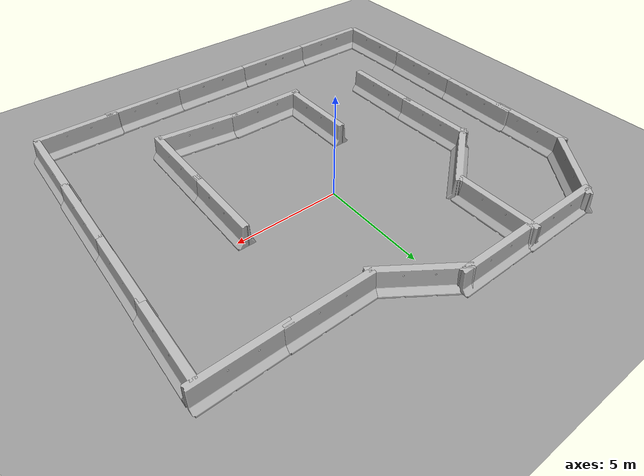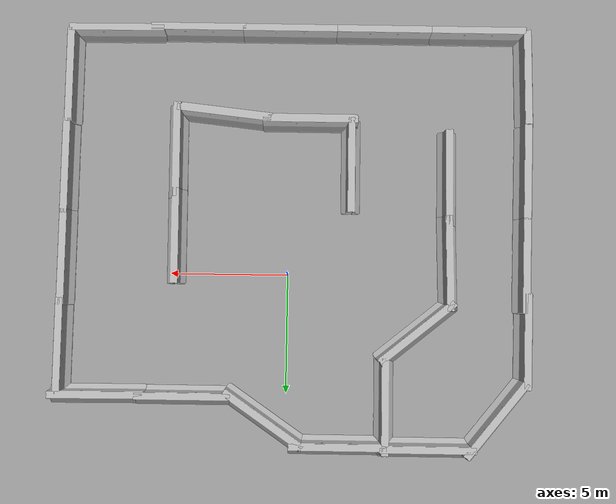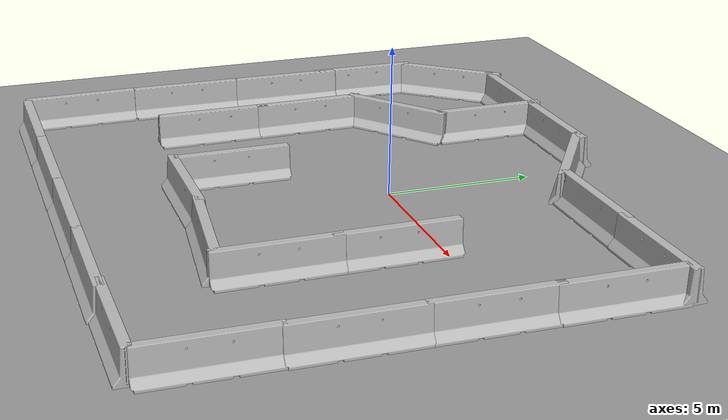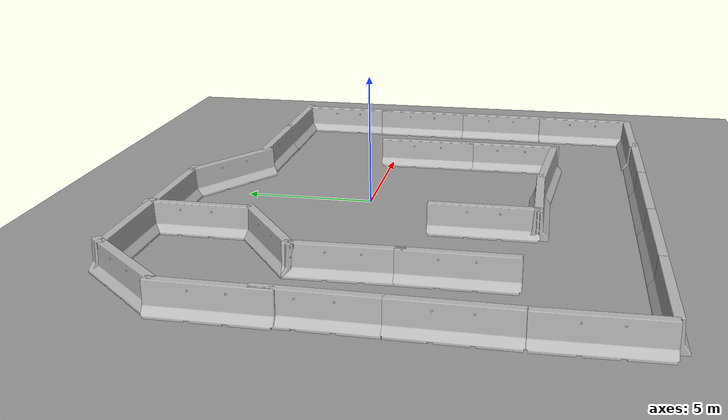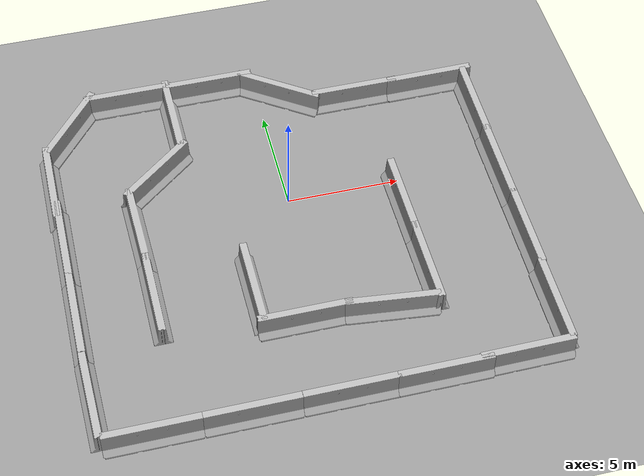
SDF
<sdf version="1.6">
 <world name="default">
  <light name="sun" type="directional">
   <pose>0 0 10 0 -0 0</pose>
   <diffuse>0.8 0.8 0.8 1</diffuse>
   <specular>0.2 0.2 0.2 1</specular>
   <attenuation>
    <range>1000</range>
    <constant>0.9</constant>
    <linear>0.01</linear>
    <quadratic>0.001</quadratic>
   </attenuation>
   <direction>0.5 0.1 -0.9</direction>
  </light>
  <scene><ambient>0.4 0.4 0.4 1</ambient><background>0.7 0.7 0.7 1</background><shadows>1</shadows></scene>
  <physics name="default_physics" default="0" type="ode">
   <max_step_size>0.01</max_step_size>
   <real_time_factor>1</real_time_factor>
   <real_time_update_rate>100</real_time_update_rate>
  </physics>
  <model name="ground_plane_0">
   <static>1</static>
   <link name="link">
    <collision name="collision">
     <geometry><plane><normal>0 0 1</normal><size>100 100</size></plane></geometry>
     <surface><friction><ode><mu>100</mu><mu2>50</mu2></ode></friction></surface>
    </collision>
    <visual name="visual">
     <cast_shadows>0</cast_shadows>
     <geometry><plane><normal>0 0 1</normal><size>100 100</size></plane></geometry>
     <material>
      <script><uri>file://media/materials/scripts/gazebo.material</uri><name>Gazebo/Grey</name></script>
     </material>
    </visual>
    <velocity_decay><linear>0</linear><angular>0</angular></velocity_decay>
   </link>
   <pose>0.497681 0 0 0 -0 0</pose>
  </model>
  <gravity>0 0 -9.8</gravity>
  <magnetic_field>6e-06 2.3e-05 -4.2e-05</magnetic_field>
  <atmosphere type="adiabatic"/>
  <spherical_coordinates>
   <surface_model>EARTH_WGS84</surface_model>
   <latitude_deg>0</latitude_deg>
   <longitude_deg>0</longitude_deg>
   <elevation>0</elevation>
   <heading_deg>0</heading_deg>
  </spherical_coordinates>
  <model name="jersey_barrier_0">
   <static>1</static>
   <link name="link">
    <visual name="visual">
     <geometry>
      <mesh><uri>model://jersey_barrier/meshes/jersey_barrier.dae</uri><scale>1 1 1</scale></mesh>
     </geometry>
    </visual>
    <collision name="upright">
     <pose>0 0 0.5715 0 -0 0</pose>
     <geometry><box><size>4.06542 0.3063 1.143</size></box></geometry>
    </collision>
    <collision name="base">
     <pose>0 0 0.032258 0 -0 0</pose>
     <geometry><box><size>4.06542 0.8107 0.064516</size></box></geometry>
    </collision>
    <collision name="base2">
     <pose>0 0 0.1 0 -0 0</pose>
     <geometry><box><size>4.06542 0.65 0.1</size></box></geometry>
    </collision>
    <collision name="base3">
     <pose>0 0 0.2 0 -0 0</pose>
     <geometry><box><size>4.06542 0.5 0.1</size></box></geometry>
    </collision>
    <collision name="left-angle">
     <pose>0 -0.224 0.2401 0.9 -0 0</pose>
     <geometry><box><size>4.06542 0.5 0.064516</size></box></geometry>
    </collision>
    <collision name="right-angle">
     <pose>0 0.224 0.2401 -0.9 0 0</pose>
     <geometry><box><size>4.06542 0.5 0.064516</size></box></geometry>
    </collision>
   </link>
   <pose>0.044913 -10.4917 0 0 -0 0</pose>
  </model>
  <model name="jersey_barrier_1">
   <static>1</static>
   <link name="link">
    <visual name="visual">
     <geometry>
      <mesh><uri>model://jersey_barrier/meshes/jersey_barrier.dae</uri><scale>1 1 1</scale></mesh>
     </geometry>
    </visual>
    <collision name="upright">
     <pose>0 0 0.5715 0 -0 0</pose>
     <geometry><box><size>4.06542 0.3063 1.143</size></box></geometry>
    </collision>
    <collision name="base">
     <pose>0 0 0.032258 0 -0 0</pose>
     <geometry><box><size>4.06542 0.8107 0.064516</size></box></geometry>
    </collision>
    <collision name="base2">
     <pose>0 0 0.1 0 -0 0</pose>
     <geometry><box><size>4.06542 0.65 0.1</size></box></geometry>
    </collision>
    <collision name="base3">
     <pose>0 0 0.2 0 -0 0</pose>
     <geometry><box><size>4.06542 0.5 0.1</size></box></geometry>
    </collision>
    <collision name="left-angle">
     <pose>0 -0.224 0.2401 0.9 -0 0</pose>
     <geometry><box><size>4.06542 0.5 0.064516</size></box></geometry>
    </collision>
    <collision name="right-angle">
     <pose>0 0.224 0.2401 -0.9 0 0</pose>
     <geometry><box><size>4.06542 0.5 0.064516</size></box></geometry>
    </collision>
   </link>
   <pose>3.93437 -10.4926 0 0 -0 0</pose>
  </model>
  <model name="jersey_barrier_1_clone_0">
   <static>1</static>
   <link name="link">
    <visual name="visual">
     <geometry>
      <mesh><uri>model://jersey_barrier/meshes/jersey_barrier.dae</uri><scale>1 1 1</scale></mesh>
     </geometry>
    </visual>
    <collision name="upright">
     <pose>0 0 0.5715 0 -0 0</pose>
     <geometry><box><size>4.06542 0.3063 1.143</size></box></geometry>
    </collision>
    <collision name="base">
     <pose>0 0 0.032258 0 -0 0</pose>
     <geometry><box><size>4.06542 0.8107 0.064516</size></box></geometry>
    </collision>
    <collision name="base2">
     <pose>0 0 0.1 0 -0 0</pose>
     <geometry><box><size>4.06542 0.65 0.1</size></box></geometry>
    </collision>
    <collision name="base3">
     <pose>0 0 0.2 0 -0 0</pose>
     <geometry><box><size>4.06542 0.5 0.1</size></box></geometry>
    </collision>
    <collision name="left-angle">
     <pose>0 -0.224 0.2401 0.9 -0 0</pose>
     <geometry><box><size>4.06542 0.5 0.064516</size></box></geometry>
    </collision>
    <collision name="right-angle">
     <pose>0 0.224 0.2401 -0.9 0 0</pose>
     <geometry><box><size>4.06542 0.5 0.064516</size></box></geometry>
    </collision>
   </link>
   <pose>-3.96775 -10.4974 0 0 -0 0</pose>
  </model>
  <model name="jersey_barrier_1_clone_1">
   <static>1</static>
   <link name="link">
    <visual name="visual">
     <geometry>
      <mesh><uri>model://jersey_barrier/meshes/jersey_barrier.dae</uri><scale>1 1 1</scale></mesh>
     </geometry>
    </visual>
    <collision name="upright">
     <pose>0 0 0.5715 0 -0 0</pose>
     <geometry><box><size>4.06542 0.3063 1.143</size></box></geometry>
    </collision>
    <collision name="base">
     <pose>0 0 0.032258 0 -0 0</pose>
     <geometry><box><size>4.06542 0.8107 0.064516</size></box></geometry>
    </collision>
    <collision name="base2">
     <pose>0 0 0.1 0 -0 0</pose>
     <geometry><box><size>4.06542 0.65 0.1</size></box></geometry>
    </collision>
    <collision name="base3">
     <pose>0 0 0.2 0 -0 0</pose>
     <geometry><box><size>4.06542 0.5 0.1</size></box></geometry>
    </collision>
    <collision name="left-angle">
     <pose>0 -0.224 0.2401 0.9 -0 0</pose>
     <geometry><box><size>4.06542 0.5 0.064516</size></box></geometry>
    </collision>
    <collision name="right-angle">
     <pose>0 0.224 0.2401 -0.9 0 0</pose>
     <geometry><box><size>4.06542 0.5 0.064516</size></box></geometry>
    </collision>
   </link>
   <pose>-7.97176 -10.4956 0 0 -0 0</pose>
  </model>
  <model name="jersey_barrier_1_clone_2">
   <static>1</static>
   <link name="link">
    <visual name="visual">
     <geometry>
      <mesh><uri>model://jersey_barrier/meshes/jersey_barrier.dae</uri><scale>1 1 1</scale></mesh>
     </geometry>
    </visual>
    <collision name="upright">
     <pose>0 0 0.5715 0 -0 0</pose>
     <geometry><box><size>4.06542 0.3063 1.143</size></box></geometry>
    </collision>
    <collision name="base">
     <pose>0 0 0.032258 0 -0 0</pose>
     <geometry><box><size>4.06542 0.8107 0.064516</size></box></geometry>
    </collision>
    <collision name="base2">
     <pose>0 0 0.1 0 -0 0</pose>
     <geometry><box><size>4.06542 0.65 0.1</size></box></geometry>
    </collision>
    <collision name="base3">
     <pose>0 0 0.2 0 -0 0</pose>
     <geometry><box><size>4.06542 0.5 0.1</size></box></geometry>
    </collision>
    <collision name="left-angle">
     <pose>0 -0.224 0.2401 0.9 -0 0</pose>
     <geometry><box><size>4.06542 0.5 0.064516</size></box></geometry>
    </collision>
    <collision name="right-angle">
     <pose>0 0.224 0.2401 -0.9 0 0</pose>
     <geometry><box><size>4.06542 0.5 0.064516</size></box></geometry>
    </collision>
   </link>
   <pose>-10.0738 -8.515 0 0 0 -1.55445</pose>
  </model>
  <model name="jersey_barrier_1_clone_2_clone">
   <static>1</static>
   <link name="link">
    <visual name="visual">
     <geometry>
      <mesh><uri>model://jersey_barrier/meshes/jersey_barrier.dae</uri><scale>1 1 1</scale></mesh>
     </geometry>
    </visual>
    <collision name="upright">
     <pose>0 0 0.5715 0 -0 0</pose>
     <geometry><box><size>4.06542 0.3063 1.143</size></box></geometry>
    </collision>
    <collision name="base">
     <pose>0 0 0.032258 0 -0 0</pose>
     <geometry><box><size>4.06542 0.8107 0.064516</size></box></geometry>
    </collision>
    <collision name="base2">
     <pose>0 0 0.1 0 -0 0</pose>
     <geometry><box><size>4.06542 0.65 0.1</size></box></geometry>
    </collision>
    <collision name="base3">
     <pose>0 0 0.2 0 -0 0</pose>
     <geometry><box><size>4.06542 0.5 0.1</size></box></geometry>
    </collision>
    <collision name="left-angle">
     <pose>0 -0.224 0.2401 0.9 -0 0</pose>
     <geometry><box><size>4.06542 0.5 0.064516</size></box></geometry>
    </collision>
    <collision name="right-angle">
     <pose>0 0.224 0.2401 -0.9 0 0</pose>
     <geometry><box><size>4.06542 0.5 0.064516</size></box></geometry>
    </collision>
   </link>
   <pose>-10.0721 -4.47903 0 0 0 -1.5814</pose>
  </model>
  <model name="jersey_barrier_1_clone_2_clone_0">
   <static>1</static>
   <link name="link">
    <visual name="visual">
     <geometry>
      <mesh><uri>model://jersey_barrier/meshes/jersey_barrier.dae</uri><scale>1 1 1</scale></mesh>
     </geometry>
    </visual>
    <collision name="upright">
     <pose>0 0 0.5715 0 -0 0</pose>
     <geometry><box><size>4.06542 0.3063 1.143</size></box></geometry>
    </collision>
    <collision name="base">
     <pose>0 0 0.032258 0 -0 0</pose>
     <geometry><box><size>4.06542 0.8107 0.064516</size></box></geometry>
    </collision>
    <collision name="base2">
     <pose>0 0 0.1 0 -0 0</pose>
     <geometry><box><size>4.06542 0.65 0.1</size></box></geometry>
    </collision>
    <collision name="base3">
     <pose>0 0 0.2 0 -0 0</pose>
     <geometry><box><size>4.06542 0.5 0.1</size></box></geometry>
    </collision>
    <collision name="left-angle">
     <pose>0 -0.224 0.2401 0.9 -0 0</pose>
     <geometry><box><size>4.06542 0.5 0.064516</size></box></geometry>
    </collision>
    <collision name="right-angle">
     <pose>0 0.224 0.2401 -0.9 0 0</pose>
     <geometry><box><size>4.06542 0.5 0.064516</size></box></geometry>
    </collision>
   </link>
   <pose>-10.0264 -0.525115 0 0 0 -1.5814</pose>
  </model>
  <model name="jersey_barrier_1_clone_2_clone_1">
   <static>1</static>
   <link name="link">
    <visual name="visual">
     <geometry>
      <mesh><uri>model://jersey_barrier/meshes/jersey_barrier.dae</uri><scale>1 1 1</scale></mesh>
     </geometry>
    </visual>
    <collision name="upright">
     <pose>0 0 0.5715 0 -0 0</pose>
     <geometry><box><size>4.06542 0.3063 1.143</size></box></geometry>
    </collision>
    <collision name="base">
     <pose>0 0 0.032258 0 -0 0</pose>
     <geometry><box><size>4.06542 0.8107 0.064516</size></box></geometry>
    </collision>
    <collision name="base2">
     <pose>0 0 0.1 0 -0 0</pose>
     <geometry><box><size>4.06542 0.65 0.1</size></box></geometry>
    </collision>
    <collision name="base3">
     <pose>0 0 0.2 0 -0 0</pose>
     <geometry><box><size>4.06542 0.5 0.1</size></box></geometry>
    </collision>
    <collision name="left-angle">
     <pose>0 -0.224 0.2401 0.9 -0 0</pose>
     <geometry><box><size>4.06542 0.5 0.064516</size></box></geometry>
    </collision>
    <collision name="right-angle">
     <pose>0 0.224 0.2401 -0.9 0 0</pose>
     <geometry><box><size>4.06542 0.5 0.064516</size></box></geometry>
    </collision>
   </link>
   <pose>-10.0755 2.66372 0 0 0 -1.5814</pose>
  </model>
  <model name="jersey_barrier_1_clone_1_clone">
   <static>1</static>
   <link name="link">
    <visual name="visual">
     <geometry>
      <mesh><uri>model://jersey_barrier/meshes/jersey_barrier.dae</uri><scale>1 1 1</scale></mesh>
     </geometry>
    </visual>
    <collision name="upright">
     <pose>0 0 0.5715 0 -0 0</pose>
     <geometry><box><size>4.06542 0.3063 1.143</size></box></geometry>
    </collision>
    <collision name="base">
     <pose>0 0 0.032258 0 -0 0</pose>
     <geometry><box><size>4.06542 0.8107 0.064516</size></box></geometry>
    </collision>
    <collision name="base2">
     <pose>0 0 0.1 0 -0 0</pose>
     <geometry><box><size>4.06542 0.65 0.1</size></box></geometry>
    </collision>
    <collision name="base3">
     <pose>0 0 0.2 0 -0 0</pose>
     <geometry><box><size>4.06542 0.5 0.1</size></box></geometry>
    </collision>
    <collision name="left-angle">
     <pose>0 -0.224 0.2401 0.9 -0 0</pose>
     <geometry><box><size>4.06542 0.5 0.064516</size></box></geometry>
    </collision>
    <collision name="right-angle">
     <pose>0 0.224 0.2401 -0.9 0 0</pose>
     <geometry><box><size>4.06542 0.5 0.064516</size></box></geometry>
    </collision>
   </link>
   <pose>-8.78318 5.95391 0 0 -0 0.89232</pose>
  </model>
  <model name="jersey_barrier_1_clone_2_clone_3_clone_0">
   <static>1</static>
   <link name="link">
    <visual name="visual">
     <geometry>
      <mesh><uri>model://jersey_barrier/meshes/jersey_barrier.dae</uri><scale>1 1 1</scale></mesh>
     </geometry>
    </visual>
    <collision name="upright">
     <pose>0 0 0.5715 0 -0 0</pose>
     <geometry><box><size>4.06542 0.3063 1.143</size></box></geometry>
    </collision>
    <collision name="base">
     <pose>0 0 0.032258 0 -0 0</pose>
     <geometry><box><size>4.06542 0.8107 0.064516</size></box></geometry>
    </collision>
    <collision name="base2">
     <pose>0 0 0.1 0 -0 0</pose>
     <geometry><box><size>4.06542 0.65 0.1</size></box></geometry>
    </collision>
    <collision name="base3">
     <pose>0 0 0.2 0 -0 0</pose>
     <geometry><box><size>4.06542 0.5 0.1</size></box></geometry>
    </collision>
    <collision name="left-angle">
     <pose>0 -0.224 0.2401 0.9 -0 0</pose>
     <geometry><box><size>4.06542 0.5 0.064516</size></box></geometry>
    </collision>
    <collision name="right-angle">
     <pose>0 0.224 0.2401 -0.9 0 0</pose>
     <geometry><box><size>4.06542 0.5 0.064516</size></box></geometry>
    </collision>
   </link>
   <pose>9.45211 -4.48536 0 0 0 -1.5814</pose>
  </model>
  <model name="jersey_barrier_1_clone_2_clone_3_clone_1">
   <static>1</static>
   <link name="link">
    <visual name="visual">
     <geometry>
      <mesh><uri>model://jersey_barrier/meshes/jersey_barrier.dae</uri><scale>1 1 1</scale></mesh>
     </geometry>
    </visual>
    <collision name="upright">
     <pose>0 0 0.5715 0 -0 0</pose>
     <geometry><box><size>4.06542 0.3063 1.143</size></box></geometry>
    </collision>
    <collision name="base">
     <pose>0 0 0.032258 0 -0 0</pose>
     <geometry><box><size>4.06542 0.8107 0.064516</size></box></geometry>
    </collision>
    <collision name="base2">
     <pose>0 0 0.1 0 -0 0</pose>
     <geometry><box><size>4.06542 0.65 0.1</size></box></geometry>
    </collision>
    <collision name="base3">
     <pose>0 0 0.2 0 -0 0</pose>
     <geometry><box><size>4.06542 0.5 0.1</size></box></geometry>
    </collision>
    <collision name="left-angle">
     <pose>0 -0.224 0.2401 0.9 -0 0</pose>
     <geometry><box><size>4.06542 0.5 0.064516</size></box></geometry>
    </collision>
    <collision name="right-angle">
     <pose>0 0.224 0.2401 -0.9 0 0</pose>
     <geometry><box><size>4.06542 0.5 0.064516</size></box></geometry>
    </collision>
   </link>
   <pose>9.48834 -0.628239 0 0 0 -1.5814</pose>
  </model>
  <model name="jersey_barrier_1_clone_1_clone_clone_2_clone_0">
   <static>1</static>
   <link name="link">
    <visual name="visual">
     <geometry>
      <mesh><uri>model://jersey_barrier/meshes/jersey_barrier.dae</uri><scale>1 1 1</scale></mesh>
     </geometry>
    </visual>
    <collision name="upright">
     <pose>0 0 0.5715 0 -0 0</pose>
     <geometry><box><size>4.06542 0.3063 1.143</size></box></geometry>
    </collision>
    <collision name="base">
     <pose>0 0 0.032258 0 -0 0</pose>
     <geometry><box><size>4.06542 0.8107 0.064516</size></box></geometry>
    </collision>
    <collision name="base2">
     <pose>0 0 0.1 0 -0 0</pose>
     <geometry><box><size>4.06542 0.65 0.1</size></box></geometry>
    </collision>
    <collision name="base3">
     <pose>0 0 0.2 0 -0 0</pose>
     <geometry><box><size>4.06542 0.5 0.1</size></box></geometry>
    </collision>
    <collision name="left-angle">
     <pose>0 -0.224 0.2401 0.9 -0 0</pose>
     <geometry><box><size>4.06542 0.5 0.064516</size></box></geometry>
    </collision>
    <collision name="right-angle">
     <pose>0 0.224 0.2401 -0.9 0 0</pose>
     <geometry><box><size>4.06542 0.5 0.064516</size></box></geometry>
    </collision>
   </link>
   <pose>-0.872994 -6.59916 0 0 -0 0</pose>
  </model>
  <model name="jersey_barrier_1_clone_1_clone_clone_2_clone_0_clone_0">
   <static>1</static>
   <link name="link">
    <visual name="visual">
     <geometry>
      <mesh><uri>model://jersey_barrier/meshes/jersey_barrier.dae</uri><scale>1 1 1</scale></mesh>
     </geometry>
    </visual>
    <collision name="upright">
     <pose>0 0 0.5715 0 -0 0</pose>
     <geometry><box><size>4.06542 0.3063 1.143</size></box></geometry>
    </collision>
    <collision name="base">
     <pose>0 0 0.032258 0 -0 0</pose>
     <geometry><box><size>4.06542 0.8107 0.064516</size></box></geometry>
    </collision>
    <collision name="base2">
     <pose>0 0 0.1 0 -0 0</pose>
     <geometry><box><size>4.06542 0.65 0.1</size></box></geometry>
    </collision>
    <collision name="base3">
     <pose>0 0 0.2 0 -0 0</pose>
     <geometry><box><size>4.06542 0.5 0.1</size></box></geometry>
    </collision>
    <collision name="left-angle">
     <pose>0 -0.224 0.2401 0.9 -0 0</pose>
     <geometry><box><size>4.06542 0.5 0.064516</size></box></geometry>
    </collision>
    <collision name="right-angle">
     <pose>0 0.224 0.2401 -0.9 0 0</pose>
     <geometry><box><size>4.06542 0.5 0.064516</size></box></geometry>
    </collision>
   </link>
   <pose>4.33757 5.139 0 0 -0 0</pose>
  </model>
  <model name="jersey_barrier_1_clone_1_clone_clone_2_clone_0_clone_1">
   <static>1</static>
   <link name="link">
    <visual name="visual">
     <geometry>
      <mesh><uri>model://jersey_barrier/meshes/jersey_barrier.dae</uri><scale>1 1 1</scale></mesh>
     </geometry>
    </visual>
    <collision name="upright">
     <pose>0 0 0.5715 0 -0 0</pose>
     <geometry><box><size>4.06542 0.3063 1.143</size></box></geometry>
    </collision>
    <collision name="base">
     <pose>0 0 0.032258 0 -0 0</pose>
     <geometry><box><size>4.06542 0.8107 0.064516</size></box></geometry>
    </collision>
    <collision name="base2">
     <pose>0 0 0.1 0 -0 0</pose>
     <geometry><box><size>4.06542 0.65 0.1</size></box></geometry>
    </collision>
    <collision name="base3">
     <pose>0 0 0.2 0 -0 0</pose>
     <geometry><box><size>4.06542 0.5 0.1</size></box></geometry>
    </collision>
    <collision name="left-angle">
     <pose>0 -0.224 0.2401 0.9 -0 0</pose>
     <geometry><box><size>4.06542 0.5 0.064516</size></box></geometry>
    </collision>
    <collision name="right-angle">
     <pose>0 0.224 0.2401 -0.9 0 0</pose>
     <geometry><box><size>4.06542 0.5 0.064516</size></box></geometry>
    </collision>
   </link>
   <pose>-5.92162 7.20254 0 0 -0 0</pose>
  </model>
  <model name="jersey_barrier_1_clone_1_clone_clone_2_clone_0_clone_2">
   <static>1</static>
   <link name="link">
    <visual name="visual">
     <geometry>
      <mesh><uri>model://jersey_barrier/meshes/jersey_barrier.dae</uri><scale>1 1 1</scale></mesh>
     </geometry>
    </visual>
    <collision name="upright">
     <pose>0 0 0.5715 0 -0 0</pose>
     <geometry><box><size>4.06542 0.3063 1.143</size></box></geometry>
    </collision>
    <collision name="base">
     <pose>0 0 0.032258 0 -0 0</pose>
     <geometry><box><size>4.06542 0.8107 0.064516</size></box></geometry>
    </collision>
    <collision name="base2">
     <pose>0 0 0.1 0 -0 0</pose>
     <geometry><box><size>4.06542 0.65 0.1</size></box></geometry>
    </collision>
    <collision name="base3">
     <pose>0 0 0.2 0 -0 0</pose>
     <geometry><box><size>4.06542 0.5 0.1</size></box></geometry>
    </collision>
    <collision name="left-angle">
     <pose>0 -0.224 0.2401 0.9 -0 0</pose>
     <geometry><box><size>4.06542 0.5 0.064516</size></box></geometry>
    </collision>
    <collision name="right-angle">
     <pose>0 0.224 0.2401 -0.9 0 0</pose>
     <geometry><box><size>4.06542 0.5 0.064516</size></box></geometry>
    </collision>
   </link>
   <pose>-2.13502 7.14849 0 0 -0 0</pose>
  </model>
  <model name="jersey_barrier_1_clone_2_clone_2_clone">
   <static>1</static>
   <link name="link">
    <visual name="visual">
     <geometry>
      <mesh><uri>model://jersey_barrier/meshes/jersey_barrier.dae</uri><scale>1 1 1</scale></mesh>
     </geometry>
    </visual>
    <collision name="upright">
     <pose>0 0 0.5715 0 -0 0</pose>
     <geometry><box><size>4.06542 0.3063 1.143</size></box></geometry>
    </collision>
    <collision name="base">
     <pose>0 0 0.032258 0 -0 0</pose>
     <geometry><box><size>4.06542 0.8107 0.064516</size></box></geometry>
    </collision>
    <collision name="base2">
     <pose>0 0 0.1 0 -0 0</pose>
     <geometry><box><size>4.06542 0.65 0.1</size></box></geometry>
    </collision>
    <collision name="base3">
     <pose>0 0 0.2 0 -0 0</pose>
     <geometry><box><size>4.06542 0.5 0.1</size></box></geometry>
    </collision>
    <collision name="left-angle">
     <pose>0 -0.224 0.2401 0.9 -0 0</pose>
     <geometry><box><size>4.06542 0.5 0.064516</size></box></geometry>
    </collision>
    <collision name="right-angle">
     <pose>0 0.224 0.2401 -0.9 0 0</pose>
     <geometry><box><size>4.06542 0.5 0.064516</size></box></geometry>
    </collision>
   </link>
   <pose>9.55264 3.10131 0 0 0 -1.5814</pose>
  </model>
  <model name="jersey_barrier_1_clone_2_clone_2_clone_0">
   <static>1</static>
   <link name="link">
    <visual name="visual">
     <geometry>
      <mesh><uri>model://jersey_barrier/meshes/jersey_barrier.dae</uri><scale>1 1 1</scale></mesh>
     </geometry>
    </visual>
    <collision name="upright">
     <pose>0 0 0.5715 0 -0 0</pose>
     <geometry><box><size>4.06542 0.3063 1.143</size></box></geometry>
    </collision>
    <collision name="base">
     <pose>0 0 0.032258 0 -0 0</pose>
     <geometry><box><size>4.06542 0.8107 0.064516</size></box></geometry>
    </collision>
    <collision name="base2">
     <pose>0 0 0.1 0 -0 0</pose>
     <geometry><box><size>4.06542 0.65 0.1</size></box></geometry>
    </collision>
    <collision name="base3">
     <pose>0 0 0.2 0 -0 0</pose>
     <geometry><box><size>4.06542 0.5 0.1</size></box></geometry>
    </collision>
    <collision name="left-angle">
     <pose>0 -0.224 0.2401 0.9 -0 0</pose>
     <geometry><box><size>4.06542 0.5 0.064516</size></box></geometry>
    </collision>
    <collision name="right-angle">
     <pose>0 0.224 0.2401 -0.9 0 0</pose>
     <geometry><box><size>4.06542 0.5 0.064516</size></box></geometry>
    </collision>
   </link>
   <pose>9.36402 -8.36741 0 0 0 -1.5814</pose>
  </model>
  <model name="jersey_barrier_clone_0">
   <static>1</static>
   <link name="link">
    <visual name="visual">
     <geometry>
      <mesh><uri>model://jersey_barrier/meshes/jersey_barrier.dae</uri><scale>1 1 1</scale></mesh>
     </geometry>
    </visual>
    <collision name="upright">
     <pose>0 0 0.5715 0 -0 0</pose>
     <geometry><box><size>4.06542 0.3063 1.143</size></box></geometry>
    </collision>
    <collision name="base">
     <pose>0 0 0.032258 0 -0 0</pose>
     <geometry><box><size>4.06542 0.8107 0.064516</size></box></geometry>
    </collision>
    <collision name="base2">
     <pose>0 0 0.1 0 -0 0</pose>
     <geometry><box><size>4.06542 0.65 0.1</size></box></geometry>
    </collision>
    <collision name="base3">
     <pose>0 0 0.2 0 -0 0</pose>
     <geometry><box><size>4.06542 0.5 0.1</size></box></geometry>
    </collision>
    <collision name="left-angle">
     <pose>0 -0.224 0.2401 0.9 -0 0</pose>
     <geometry><box><size>4.06542 0.5 0.064516</size></box></geometry>
    </collision>
    <collision name="right-angle">
     <pose>0 0.224 0.2401 -0.9 0 0</pose>
     <geometry><box><size>4.06542 0.5 0.064516</size></box></geometry>
    </collision>
    <velocity_decay><linear>0</linear><angular>0</angular></velocity_decay>
   </link>
   <pose>-6.80316 -0.578185 0 0 0 -1.54713</pose>
  </model>
  <model name="jersey_barrier_1_clone_1_clone_clone_2_clone_clone">
   <static>1</static>
   <link name="link">
    <visual name="visual">
     <geometry>
      <mesh><uri>model://jersey_barrier/meshes/jersey_barrier.dae</uri><scale>1 1 1</scale></mesh>
     </geometry>
    </visual>
    <collision name="upright">
     <pose>0 0 0.5715 0 -0 0</pose>
     <geometry><box><size>4.06542 0.3063 1.143</size></box></geometry>
    </collision>
    <collision name="base">
     <pose>0 0 0.032258 0 -0 0</pose>
     <geometry><box><size>4.06542 0.8107 0.064516</size></box></geometry>
    </collision>
    <collision name="base2">
     <pose>0 0 0.1 0 -0 0</pose>
     <geometry><box><size>4.06542 0.65 0.1</size></box></geometry>
    </collision>
    <collision name="base3">
     <pose>0 0 0.2 0 -0 0</pose>
     <geometry><box><size>4.06542 0.5 0.1</size></box></geometry>
    </collision>
    <collision name="left-angle">
     <pose>0 -0.224 0.2401 0.9 -0 0</pose>
     <geometry><box><size>4.06542 0.5 0.064516</size></box></geometry>
    </collision>
    <collision name="right-angle">
     <pose>0 0.224 0.2401 -0.9 0 0</pose>
     <geometry><box><size>4.06542 0.5 0.064516</size></box></geometry>
    </collision>
   </link>
   <pose>4.7723 -5.23333 0 0 0 -1.56872</pose>
  </model>
  <model name="jersey_barrier_1_clone_1_clone_clone_2_clone_clone_clone">
   <static>1</static>
   <link name="link">
    <visual name="visual">
     <geometry>
      <mesh><uri>model://jersey_barrier/meshes/jersey_barrier.dae</uri><scale>1 1 1</scale></mesh>
     </geometry>
    </visual>
    <collision name="upright">
     <pose>0 0 0.5715 0 -0 0</pose>
     <geometry><box><size>4.06542 0.3063 1.143</size></box></geometry>
    </collision>
    <collision name="base">
     <pose>0 0 0.032258 0 -0 0</pose>
     <geometry><box><size>4.06542 0.8107 0.064516</size></box></geometry>
    </collision>
    <collision name="base2">
     <pose>0 0 0.1 0 -0 0</pose>
     <geometry><box><size>4.06542 0.65 0.1</size></box></geometry>
    </collision>
    <collision name="base3">
     <pose>0 0 0.2 0 -0 0</pose>
     <geometry><box><size>4.06542 0.5 0.1</size></box></geometry>
    </collision>
    <collision name="left-angle">
     <pose>0 -0.224 0.2401 0.9 -0 0</pose>
     <geometry><box><size>4.06542 0.5 0.064516</size></box></geometry>
    </collision>
    <collision name="right-angle">
     <pose>0 0.224 0.2401 -0.9 0 0</pose>
     <geometry><box><size>4.06542 0.5 0.064516</size></box></geometry>
    </collision>
   </link>
   <pose>-6.76272 -4.20567 0 0 0 -1.56872</pose>
  </model>
  <model name="jersey_barrier_1_clone_1_clone_clone_2_clone_clone_clone_0">
   <static>1</static>
   <link name="link">
    <visual name="visual">
     <geometry>
      <mesh><uri>model://jersey_barrier/meshes/jersey_barrier.dae</uri><scale>1 1 1</scale></mesh>
     </geometry>
    </visual>
    <collision name="upright">
     <pose>0 0 0.5715 0 -0 0</pose>
     <geometry><box><size>4.06542 0.3063 1.143</size></box></geometry>
    </collision>
    <collision name="base">
     <pose>0 0 0.032258 0 -0 0</pose>
     <geometry><box><size>4.06542 0.8107 0.064516</size></box></geometry>
    </collision>
    <collision name="base2">
     <pose>0 0 0.1 0 -0 0</pose>
     <geometry><box><size>4.06542 0.65 0.1</size></box></geometry>
    </collision>
    <collision name="base3">
     <pose>0 0 0.2 0 -0 0</pose>
     <geometry><box><size>4.06542 0.5 0.1</size></box></geometry>
    </collision>
    <collision name="left-angle">
     <pose>0 -0.224 0.2401 0.9 -0 0</pose>
     <geometry><box><size>4.06542 0.5 0.064516</size></box></geometry>
    </collision>
    <collision name="right-angle">
     <pose>0 0.224 0.2401 -0.9 0 0</pose>
     <geometry><box><size>4.06542 0.5 0.064516</size></box></geometry>
    </collision>
   </link>
   <pose>-2.63232 -4.67409 0 0 0 -1.56872</pose>
  </model>
  <model name="jersey_barrier_1_clone_1_clone_clone_2_clone_clone_clone_1">
   <static>1</static>
   <link name="link">
    <visual name="visual">
     <geometry>
      <mesh><uri>model://jersey_barrier/meshes/jersey_barrier.dae</uri><scale>1 1 1</scale></mesh>
     </geometry>
    </visual>
    <collision name="upright">
     <pose>0 0 0.5715 0 -0 0</pose>
     <geometry><box><size>4.06542 0.3063 1.143</size></box></geometry>
    </collision>
    <collision name="base">
     <pose>0 0 0.032258 0 -0 0</pose>
     <geometry><box><size>4.06542 0.8107 0.064516</size></box></geometry>
    </collision>
    <collision name="base2">
     <pose>0 0 0.1 0 -0 0</pose>
     <geometry><box><size>4.06542 0.65 0.1</size></box></geometry>
    </collision>
    <collision name="base3">
     <pose>0 0 0.2 0 -0 0</pose>
     <geometry><box><size>4.06542 0.5 0.1</size></box></geometry>
    </collision>
    <collision name="left-angle">
     <pose>0 -0.224 0.2401 0.9 -0 0</pose>
     <geometry><box><size>4.06542 0.5 0.064516</size></box></geometry>
    </collision>
    <collision name="right-angle">
     <pose>0 0.224 0.2401 -0.9 0 0</pose>
     <geometry><box><size>4.06542 0.5 0.064516</size></box></geometry>
    </collision>
   </link>
   <pose>4.76196 -1.58769 0 0 0 -1.56872</pose>
  </model>
  <model name="jersey_barrier_1_clone_1_clone_clone_2_clone_clone_clone_2">
   <static>1</static>
   <link name="link">
    <visual name="visual">
     <geometry>
      <mesh><uri>model://jersey_barrier/meshes/jersey_barrier.dae</uri><scale>1 1 1</scale></mesh>
     </geometry>
    </visual>
    <collision name="upright">
     <pose>0 0 0.5715 0 -0 0</pose>
     <geometry><box><size>4.06542 0.3063 1.143</size></box></geometry>
    </collision>
    <collision name="base">
     <pose>0 0 0.032258 0 -0 0</pose>
     <geometry><box><size>4.06542 0.8107 0.064516</size></box></geometry>
    </collision>
    <collision name="base2">
     <pose>0 0 0.1 0 -0 0</pose>
     <geometry><box><size>4.06542 0.65 0.1</size></box></geometry>
    </collision>
    <collision name="base3">
     <pose>0 0 0.2 0 -0 0</pose>
     <geometry><box><size>4.06542 0.5 0.1</size></box></geometry>
    </collision>
    <collision name="left-angle">
     <pose>0 -0.224 0.2401 0.9 -0 0</pose>
     <geometry><box><size>4.06542 0.5 0.064516</size></box></geometry>
    </collision>
    <collision name="right-angle">
     <pose>0 0.224 0.2401 -0.9 0 0</pose>
     <geometry><box><size>4.06542 0.5 0.064516</size></box></geometry>
    </collision>
   </link>
   <pose>-4.13763 5.45352 0 0 0 -1.56872</pose>
  </model>
  <model name="jersey_barrier_1_clone_1_clone_clone_2_clone_clone_clone_3">
   <static>1</static>
   <link name="link">
    <visual name="visual">
     <geometry>
      <mesh><uri>model://jersey_barrier/meshes/jersey_barrier.dae</uri><scale>1 1 1</scale></mesh>
     </geometry>
    </visual>
    <collision name="upright">
     <pose>0 0 0.5715 0 -0 0</pose>
     <geometry><box><size>4.06542 0.3063 1.143</size></box></geometry>
    </collision>
    <collision name="base">
     <pose>0 0 0.032258 0 -0 0</pose>
     <geometry><box><size>4.06542 0.8107 0.064516</size></box></geometry>
    </collision>
    <collision name="base2">
     <pose>0 0 0.1 0 -0 0</pose>
     <geometry><box><size>4.06542 0.65 0.1</size></box></geometry>
    </collision>
    <collision name="base3">
     <pose>0 0 0.2 0 -0 0</pose>
     <geometry><box><size>4.06542 0.5 0.1</size></box></geometry>
    </collision>
    <collision name="left-angle">
     <pose>0 -0.224 0.2401 0.9 -0 0</pose>
     <geometry><box><size>4.06542 0.5 0.064516</size></box></geometry>
    </collision>
    <collision name="right-angle">
     <pose>0 0.224 0.2401 -0.9 0 0</pose>
     <geometry><box><size>4.06542 0.5 0.064516</size></box></geometry>
    </collision>
   </link>
   <pose>-5.4649 2.35445 0 0 -0 0.679348</pose>
  </model>
  <model name="jersey_barrier_1_clone_1_clone_clone_2_clone_clone_clone_clone">
   <static>1</static>
   <link name="link">
    <visual name="visual">
     <geometry>
      <mesh><uri>model://jersey_barrier/meshes/jersey_barrier.dae</uri><scale>1 1 1</scale></mesh>
     </geometry>
    </visual>
    <collision name="upright">
     <pose>0 0 0.5715 0 -0 0</pose>
     <geometry><box><size>4.06542 0.3063 1.143</size></box></geometry>
    </collision>
    <collision name="base">
     <pose>0 0 0.032258 0 -0 0</pose>
     <geometry><box><size>4.06542 0.8107 0.064516</size></box></geometry>
    </collision>
    <collision name="base2">
     <pose>0 0 0.1 0 -0 0</pose>
     <geometry><box><size>4.06542 0.65 0.1</size></box></geometry>
    </collision>
    <collision name="base3">
     <pose>0 0 0.2 0 -0 0</pose>
     <geometry><box><size>4.06542 0.5 0.1</size></box></geometry>
    </collision>
    <collision name="left-angle">
     <pose>0 -0.224 0.2401 0.9 -0 0</pose>
     <geometry><box><size>4.06542 0.5 0.064516</size></box></geometry>
    </collision>
    <collision name="right-angle">
     <pose>0 0.224 0.2401 -0.9 0 0</pose>
     <geometry><box><size>4.06542 0.5 0.064516</size></box></geometry>
    </collision>
   </link>
   <pose>7.41605 -10.4178 0 0 0 -3.13402</pose>
  </model>
  <model name="jersey_barrier_1_clone_1_clone_clone_2_clone_clone_clone_clone_clone">
   <static>1</static>
   <link name="link">
    <visual name="visual">
     <geometry>
      <mesh><uri>model://jersey_barrier/meshes/jersey_barrier.dae</uri><scale>1 1 1</scale></mesh>
     </geometry>
    </visual>
    <collision name="upright">
     <pose>0 0 0.5715 0 -0 0</pose>
     <geometry><box><size>4.06542 0.3063 1.143</size></box></geometry>
    </collision>
    <collision name="base">
     <pose>0 0 0.032258 0 -0 0</pose>
     <geometry><box><size>4.06542 0.8107 0.064516</size></box></geometry>
    </collision>
    <collision name="base2">
     <pose>0 0 0.1 0 -0 0</pose>
     <geometry><box><size>4.06542 0.65 0.1</size></box></geometry>
    </collision>
    <collision name="base3">
     <pose>0 0 0.2 0 -0 0</pose>
     <geometry><box><size>4.06542 0.5 0.1</size></box></geometry>
    </collision>
    <collision name="left-angle">
     <pose>0 -0.224 0.2401 0.9 -0 0</pose>
     <geometry><box><size>4.06542 0.5 0.064516</size></box></geometry>
    </collision>
    <collision name="right-angle">
     <pose>0 0.224 0.2401 -0.9 0 0</pose>
     <geometry><box><size>4.06542 0.5 0.064516</size></box></geometry>
    </collision>
   </link>
   <pose>2.78833 -6.83196 0 0 0 -0.108491</pose>
  </model>
  <model name="jersey_barrier_1_clone_1_clone_clone_2_clone_clone_clone_clone_clone_0">
   <static>1</static>
   <link name="link">
    <visual name="visual">
     <geometry>
      <mesh><uri>model://jersey_barrier/meshes/jersey_barrier.dae</uri><scale>1 1 1</scale></mesh>
     </geometry>
    </visual>
    <collision name="upright">
     <pose>0 0 0.5715 0 -0 0</pose>
     <geometry><box><size>4.06542 0.3063 1.143</size></box></geometry>
    </collision>
    <collision name="base">
     <pose>0 0 0.032258 0 -0 0</pose>
     <geometry><box><size>4.06542 0.8107 0.064516</size></box></geometry>
    </collision>
    <collision name="base2">
     <pose>0 0 0.1 0 -0 0</pose>
     <geometry><box><size>4.06542 0.65 0.1</size></box></geometry>
    </collision>
    <collision name="base3">
     <pose>0 0 0.2 0 -0 0</pose>
     <geometry><box><size>4.06542 0.5 0.1</size></box></geometry>
    </collision>
    <collision name="left-angle">
     <pose>0 -0.224 0.2401 0.9 -0 0</pose>
     <geometry><box><size>4.06542 0.5 0.064516</size></box></geometry>
    </collision>
    <collision name="right-angle">
     <pose>0 0.224 0.2401 -0.9 0 0</pose>
     <geometry><box><size>4.06542 0.5 0.064516</size></box></geometry>
    </collision>
   </link>
   <pose>0.958769 6.06805 0 0 0 -0.603838</pose>
  </model>
  <light name="user_spot_light_0" type="spot">
   <pose>54.1052 -66.4075 1 0 -0 0</pose>
   <diffuse>0.5 0.5 0.5 1</diffuse>
   <specular>0.1 0.1 0.1 1</specular>
   <direction>0 0 -1</direction>
   <attenuation>
    <range>20</range>
    <constant>0.5</constant>
    <linear>0.01</linear>
    <quadratic>0.001</quadratic>
   </attenuation>
   <cast_shadows>0</cast_shadows>
   <spot><inner_angle>0.6</inner_angle><outer_angle>1</outer_angle><falloff>1</falloff></spot>
  </light>
  <model name="jersey_barrier_1_clone_1_clone_clone_2_clone_clone_clone_clone_clone_1">
   <static>1</static>
   <link name="link">
    <visual name="visual">
     <geometry>
      <mesh><uri>model://jersey_barrier/meshes/jersey_barrier.dae</uri><scale>1 1 1</scale></mesh>
     </geometry>
    </visual>
    <collision name="upright">
     <pose>0 0 0.5715 0 -0 0</pose>
     <geometry><box><size>4.06542 0.3063 1.143</size></box></geometry>
    </collision>
    <collision name="base">
     <pose>0 0 0.032258 0 -0 0</pose>
     <geometry><box><size>4.06542 0.8107 0.064516</size></box></geometry>
    </collision>
    <collision name="base2">
     <pose>0 0 0.1 0 -0 0</pose>
     <geometry><box><size>4.06542 0.65 0.1</size></box></geometry>
    </collision>
    <collision name="base3">
     <pose>0 0 0.2 0 -0 0</pose>
     <geometry><box><size>4.06542 0.5 0.1</size></box></geometry>
    </collision>
    <collision name="left-angle">
     <pose>0 -0.224 0.2401 0.9 -0 0</pose>
     <geometry><box><size>4.06542 0.5 0.064516</size></box></geometry>
    </collision>
    <collision name="right-angle">
     <pose>0 0.224 0.2401 -0.9 0 0</pose>
     <geometry><box><size>4.06542 0.5 0.064516</size></box></geometry>
    </collision>
   </link>
   <pose>7.94197 5.12643 0 0 0 -3.13402</pose>
  </model>
 </world>
</sdf>
